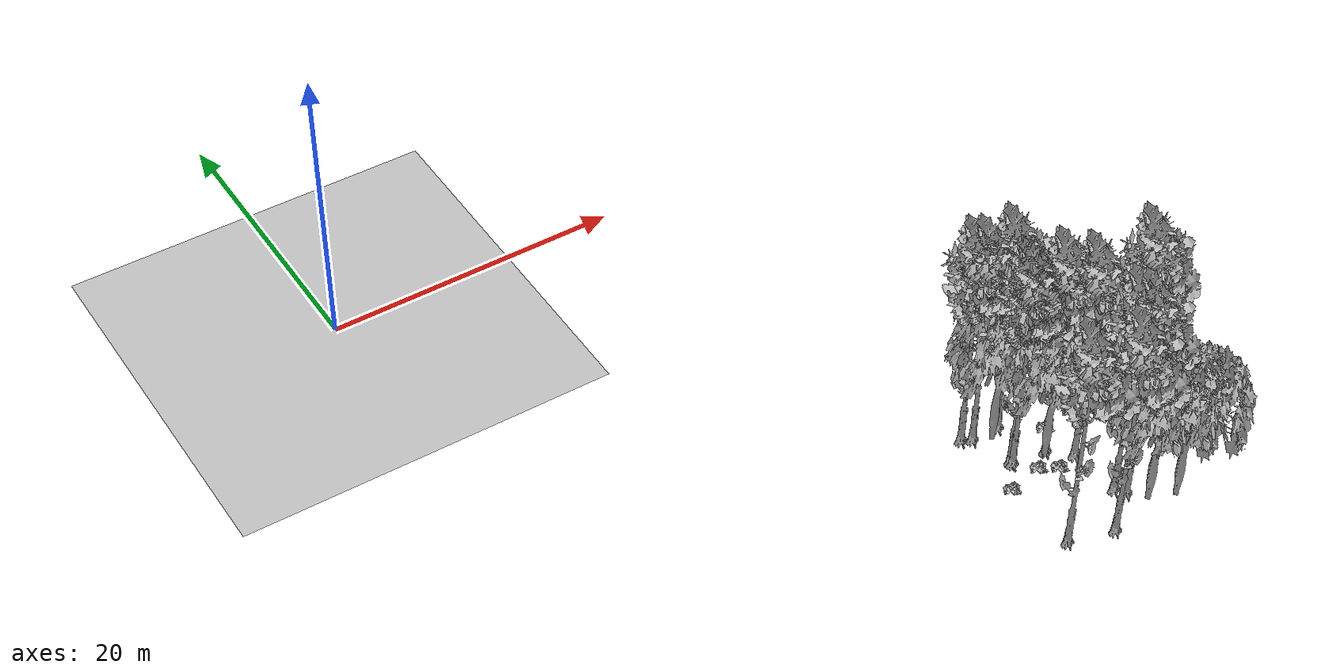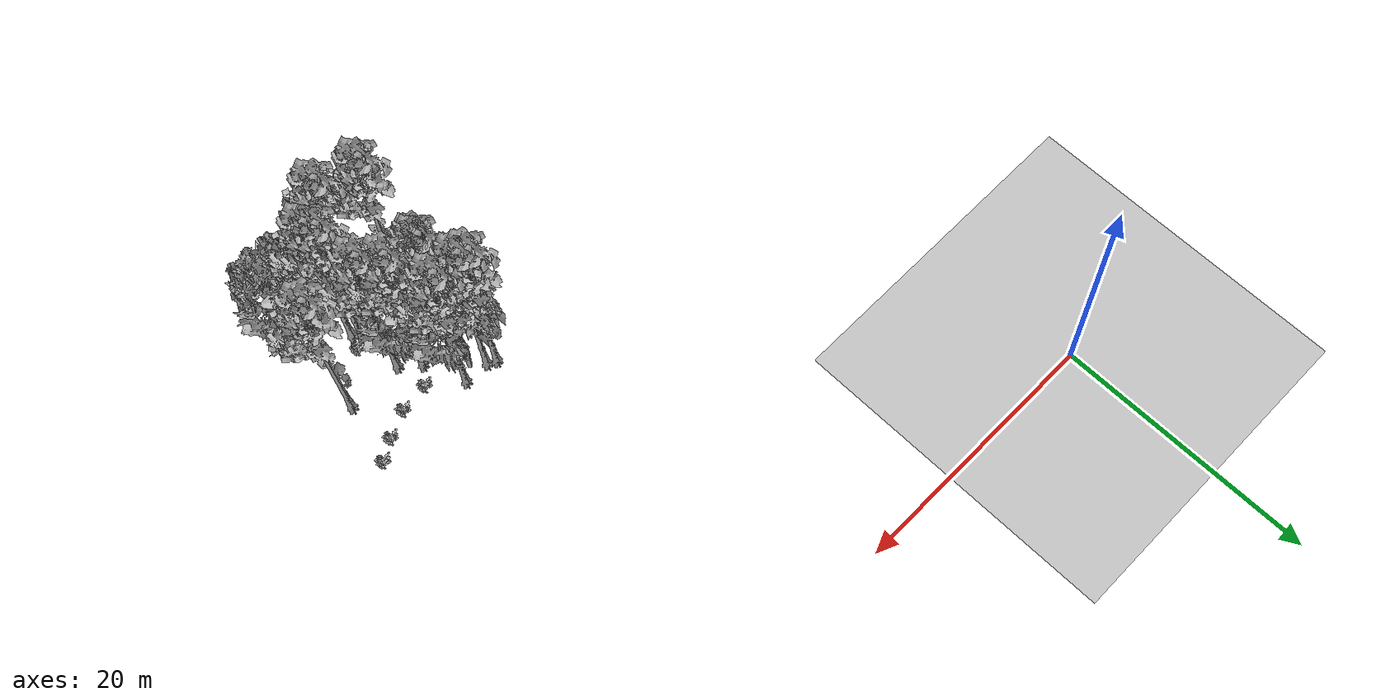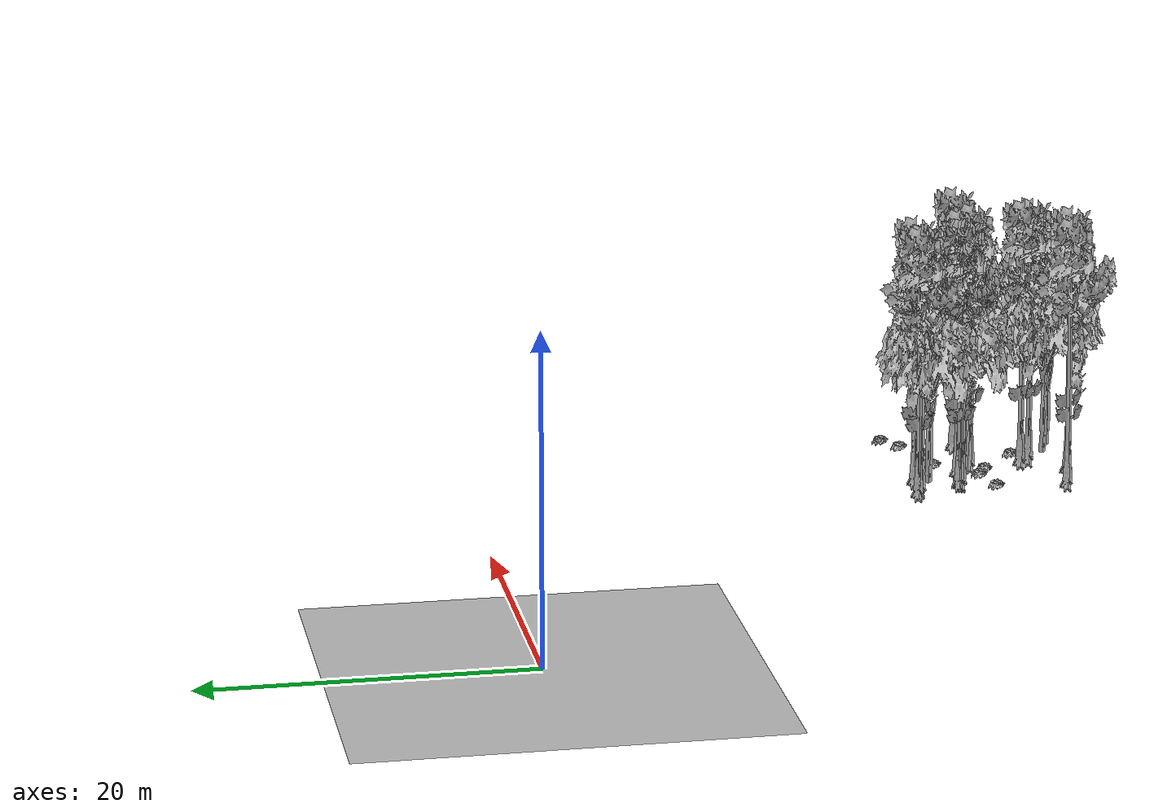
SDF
<sdf version="1.7">
 <world name="default">
  <model name="ground_plane">
   <static>1</static>
   <link name="link">
    <collision name="collision">
     <pose>-50 0 0 0 -0 0</pose>
     <geometry><plane><normal>0 0 1</normal><size>80 80</size></plane></geometry>
     <surface><contact><ode><min_depth>0.01</min_depth><max_vel>0</max_vel></ode></contact></surface>
    </collision>
    <visual name="grass">
     <cast_shadows>0</cast_shadows>
     <geometry>
      <mesh>
       <scale>0.46714285714285714 0.46714285714285714 0.1</scale>
       <uri>file://grass_plane/meshes/grass_plane.dae</uri>
      </mesh>
     </geometry>
    </visual>
   </link>
  </model>
  <model name="Tree 66">
   <static>1</static>
   <pose>31.727839768722916 -32.07183344091236 0 1.57079 -0 0</pose>
   <link name="link">
    <collision name="collision">
     <geometry><mesh><scale>3.5 5 3.5</scale><uri>model://tree_9/meshes/tree_9.obj</uri></mesh></geometry>
    </collision>
    <visual name="visual">
     <geometry><mesh><scale>3.5 5 3.5</scale><uri>model://tree_9/meshes/tree_9.obj</uri></mesh></geometry>
    </visual>
   </link>
  </model>
  <model name="Tree 97">
   <static>1</static>
   <pose>33.28308471343837 -36.688303805078284 0 1.57079 -0 0</pose>
   <link name="link">
    <collision name="collision">
     <geometry><mesh><scale>3.5 5 3.5</scale><uri>model://tree_9/meshes/tree_9.obj</uri></mesh></geometry>
    </collision>
    <visual name="visual">
     <geometry><mesh><scale>3.5 5 3.5</scale><uri>model://tree_9/meshes/tree_9.obj</uri></mesh></geometry>
    </visual>
   </link>
  </model>
  <model name="Tree 101">
   <static>1</static>
   <pose>29.411195989953754 -31.81008531708878 0 1.57079 -0 0</pose>
   <link name="link">
    <collision name="collision">
     <geometry><mesh><scale>3.5 5 3.5</scale><uri>model://tree_9/meshes/tree_9.obj</uri></mesh></geometry>
    </collision>
    <visual name="visual">
     <geometry><mesh><scale>3.5 5 3.5</scale><uri>model://tree_9/meshes/tree_9.obj</uri></mesh></geometry>
    </visual>
   </link>
  </model>
  <model name="Tree 244">
   <static>1</static>
   <pose>28.572495567751773 -28.938107536458162 0 1.57079 -0 0</pose>
   <link name="link">
    <collision name="collision">
     <geometry><mesh><scale>3.5 5 3.5</scale><uri>model://tree_9/meshes/tree_9.obj</uri></mesh></geometry>
    </collision>
    <visual name="visual">
     <geometry><mesh><scale>3.5 5 3.5</scale><uri>model://tree_9/meshes/tree_9.obj</uri></mesh></geometry>
    </visual>
   </link>
  </model>
  <model name="Tree 256">
   <static>1</static>
   <pose>34.286011097666474 -38.48305293317915 0 1.57079 -0 0</pose>
   <link name="link">
    <collision name="collision">
     <geometry><mesh><scale>3.5 5 3.5</scale><uri>model://tree_2/meshes/tree_2.obj</uri></mesh></geometry>
    </collision>
    <visual name="visual">
     <geometry><mesh><scale>3.5 5 3.5</scale><uri>model://tree_2/meshes/tree_2.obj</uri></mesh></geometry>
    </visual>
   </link>
  </model>
  <model name="Tree 268">
   <static>1</static>
   <pose>29.41127491115371 -29.66476222978441 0 1.57079 -0 0</pose>
   <link name="link">
    <collision name="collision">
     <geometry><mesh><scale>3.5 5 3.5</scale><uri>model://tree_2/meshes/tree_2.obj</uri></mesh></geometry>
    </collision>
    <visual name="visual">
     <geometry><mesh><scale>3.5 5 3.5</scale><uri>model://tree_2/meshes/tree_2.obj</uri></mesh></geometry>
    </visual>
   </link>
  </model>
  <model name="Tree 376">
   <static>1</static>
   <pose>35.91504669754727 -39.110602329663706 0 1.57079 -0 0</pose>
   <link name="link">
    <collision name="collision">
     <geometry><mesh><scale>3.5 5 3.5</scale><uri>model://tree_2/meshes/tree_2.obj</uri></mesh></geometry>
    </collision>
    <visual name="visual">
     <geometry><mesh><scale>3.5 5 3.5</scale><uri>model://tree_2/meshes/tree_2.obj</uri></mesh></geometry>
    </visual>
   </link>
  </model>
  <model name="Tree 402">
   <static>1</static>
   <pose>28.30165197238287 -38.4898794581277 0 1.57079 -0 0</pose>
   <link name="link">
    <collision name="collision">
     <geometry><mesh><scale>3.5 5 3.5</scale><uri>model://tree_9/meshes/tree_9.obj</uri></mesh></geometry>
    </collision>
    <visual name="visual">
     <geometry><mesh><scale>3.5 5 3.5</scale><uri>model://tree_9/meshes/tree_9.obj</uri></mesh></geometry>
    </visual>
   </link>
  </model>
  <model name="Tree 406">
   <static>1</static>
   <pose>33.68936498498242 -37.332562427725726 0 1.57079 -0 0</pose>
   <link name="link">
    <collision name="collision">
     <geometry><mesh><scale>3.5 5 3.5</scale><uri>model://tree_9/meshes/tree_9.obj</uri></mesh></geometry>
    </collision>
    <visual name="visual">
     <geometry><mesh><scale>3.5 5 3.5</scale><uri>model://tree_9/meshes/tree_9.obj</uri></mesh></geometry>
    </visual>
   </link>
  </model>
  <model name="Tree 448">
   <static>1</static>
   <pose>31.218019174574337 -32.48372124637547 0 1.57079 -0 0</pose>
   <link name="link">
    <collision name="collision">
     <geometry><mesh><scale>3.5 5 3.5</scale><uri>model://tree_2/meshes/tree_2.obj</uri></mesh></geometry>
    </collision>
    <visual name="visual">
     <geometry><mesh><scale>3.5 5 3.5</scale><uri>model://tree_2/meshes/tree_2.obj</uri></mesh></geometry>
    </visual>
   </link>
  </model>
  <model name="Tree 489">
   <static>1</static>
   <pose>31.25599486105928 -39.273622363831834 0 1.57079 -0 0</pose>
   <link name="link">
    <collision name="collision">
     <geometry><mesh><scale>3.5 5 3.5</scale><uri>model://tree_9/meshes/tree_9.obj</uri></mesh></geometry>
    </collision>
    <visual name="visual">
     <geometry><mesh><scale>3.5 5 3.5</scale><uri>model://tree_9/meshes/tree_9.obj</uri></mesh></geometry>
    </visual>
   </link>
  </model>
  <model name="Tree 519">
   <static>1</static>
   <pose>33.03577523488555 -33.25727610299717 0 1.57079 -0 0</pose>
   <link name="link">
    <collision name="collision">
     <geometry><mesh><scale>3.5 5 3.5</scale><uri>model://tree_9/meshes/tree_9.obj</uri></mesh></geometry>
    </collision>
    <visual name="visual">
     <geometry><mesh><scale>3.5 5 3.5</scale><uri>model://tree_9/meshes/tree_9.obj</uri></mesh></geometry>
    </visual>
   </link>
  </model>
  <model name="Tree 533">
   <static>1</static>
   <pose>29.3978148226973 -31.626109331107173 0 1.57079 -0 0</pose>
   <link name="link">
    <collision name="collision">
     <geometry><mesh><scale>3.5 5 3.5</scale><uri>model://tree_9/meshes/tree_9.obj</uri></mesh></geometry>
    </collision>
    <visual name="visual">
     <geometry><mesh><scale>3.5 5 3.5</scale><uri>model://tree_9/meshes/tree_9.obj</uri></mesh></geometry>
    </visual>
   </link>
  </model>
  <model name="Tree 569">
   <static>1</static>
   <pose>27.941329845386335 -28.613056534858252 0 1.57079 -0 0</pose>
   <link name="link">
    <collision name="collision">
     <geometry><mesh><scale>3.5 5 3.5</scale><uri>model://tree_9/meshes/tree_9.obj</uri></mesh></geometry>
    </collision>
    <visual name="visual">
     <geometry><mesh><scale>3.5 5 3.5</scale><uri>model://tree_9/meshes/tree_9.obj</uri></mesh></geometry>
    </visual>
   </link>
  </model>
  <model name="Tree 574">
   <static>1</static>
   <pose>30.488652089890905 -28.947508102560473 0 1.57079 -0 0</pose>
   <link name="link">
    <collision name="collision">
     <geometry><mesh><scale>3.5 5 3.5</scale><uri>model://tree_9/meshes/tree_9.obj</uri></mesh></geometry>
    </collision>
    <visual name="visual">
     <geometry><mesh><scale>3.5 5 3.5</scale><uri>model://tree_9/meshes/tree_9.obj</uri></mesh></geometry>
    </visual>
   </link>
  </model>
  <model name="Tree 581">
   <static>1</static>
   <pose>37.23487434606763 -33.16625195971346 0 1.57079 -0 0</pose>
   <link name="link">
    <collision name="collision">
     <geometry><mesh><scale>3.5 5 3.5</scale><uri>model://tree_9/meshes/tree_9.obj</uri></mesh></geometry>
    </collision>
    <visual name="visual">
     <geometry><mesh><scale>3.5 5 3.5</scale><uri>model://tree_9/meshes/tree_9.obj</uri></mesh></geometry>
    </visual>
   </link>
  </model>
  <model name="Bush 72">
   <static>1</static>
   <pose>38.34080961752839 -28.567839085413496 0 1.57079 -0 0</pose>
   <link name="link">
    <collision name="collision">
     <geometry><mesh><scale>2 2 2</scale><uri>model://bush_2/meshes/bush_2.obj</uri></mesh></geometry>
     <surface><contact><collide_without_contact>false</collide_without_contact></contact></surface>
    </collision>
    <visual name="visual">
     <geometry><mesh><scale>2 2 2</scale><uri>model://bush_2/meshes/bush_2.obj</uri></mesh></geometry>
    </visual>
   </link>
  </model>
  <model name="Bush 77">
   <static>1</static>
   <pose>32.67052404355971 -30.780871779842506 0 1.57079 -0 0</pose>
   <link name="link">
    <collision name="collision">
     <geometry><mesh><scale>2 2 2</scale><uri>model://bush_2/meshes/bush_2.obj</uri></mesh></geometry>
     <surface><contact><collide_without_contact>false</collide_without_contact></contact></surface>
    </collision>
    <visual name="visual">
     <geometry><mesh><scale>2 2 2</scale><uri>model://bush_2/meshes/bush_2.obj</uri></mesh></geometry>
    </visual>
   </link>
  </model>
  <model name="Bush 223">
   <static>1</static>
   <pose>34.90890015453485 -30.45612530186867 0 1.57079 -0 0</pose>
   <link name="link">
    <collision name="collision">
     <geometry><mesh><scale>2 2 2</scale><uri>model://bush_2/meshes/bush_2.obj</uri></mesh></geometry>
     <surface><contact><collide_without_contact>false</collide_without_contact></contact></surface>
    </collision>
    <visual name="visual">
     <geometry><mesh><scale>2 2 2</scale><uri>model://bush_2/meshes/bush_2.obj</uri></mesh></geometry>
    </visual>
   </link>
  </model>
  <model name="Bush 290">
   <static>1</static>
   <pose>34.05746557999852 -36.27513774359145 0 1.57079 -0 0</pose>
   <link name="link">
    <collision name="collision">
     <geometry><mesh><scale>2 2 2</scale><uri>model://bush_2/meshes/bush_2.obj</uri></mesh></geometry>
     <surface><contact><collide_without_contact>false</collide_without_contact></contact></surface>
    </collision>
    <visual name="visual">
     <geometry><mesh><scale>2 2 2</scale><uri>model://bush_2/meshes/bush_2.obj</uri></mesh></geometry>
    </visual>
   </link>
  </model>
  <model name="Bush 324">
   <static>1</static>
   <pose>31.384556706932116 -33.84009250513698 0 1.57079 -0 0</pose>
   <link name="link">
    <collision name="collision">
     <geometry><mesh><scale>2 2 2</scale><uri>model://bush_2/meshes/bush_2.obj</uri></mesh></geometry>
     <surface><contact><collide_without_contact>false</collide_without_contact></contact></surface>
    </collision>
    <visual name="visual">
     <geometry><mesh><scale>2 2 2</scale><uri>model://bush_2/meshes/bush_2.obj</uri></mesh></geometry>
    </visual>
   </link>
  </model>
  <model name="Bush 430">
   <static>1</static>
   <pose>27.84789262314095 -33.7642894588744 0 1.57079 -0 0</pose>
   <link name="link">
    <collision name="collision">
     <geometry><mesh><scale>2 2 2</scale><uri>model://bush_2/meshes/bush_2.obj</uri></mesh></geometry>
     <surface><contact><collide_without_contact>false</collide_without_contact></contact></surface>
    </collision>
    <visual name="visual">
     <geometry><mesh><scale>2 2 2</scale><uri>model://bush_2/meshes/bush_2.obj</uri></mesh></geometry>
    </visual>
   </link>
  </model>
  <model name="Bush 446">
   <static>1</static>
   <pose>30.253711551535744 -33.22606008549869 0 1.57079 -0 0</pose>
   <link name="link">
    <collision name="collision">
     <geometry><mesh><scale>2 2 2</scale><uri>model://bush_2/meshes/bush_2.obj</uri></mesh></geometry>
     <surface><contact><collide_without_contact>false</collide_without_contact></contact></surface>
    </collision>
    <visual name="visual">
     <geometry><mesh><scale>2 2 2</scale><uri>model://bush_2/meshes/bush_2.obj</uri></mesh></geometry>
    </visual>
   </link>
  </model>
  <model name="Bush 489">
   <static>1</static>
   <pose>36.86193410550844 -29.49515836954265 0 1.57079 -0 0</pose>
   <link name="link">
    <collision name="collision">
     <geometry><mesh><scale>2 2 2</scale><uri>model://bush_2/meshes/bush_2.obj</uri></mesh></geometry>
     <surface><contact><collide_without_contact>false</collide_without_contact></contact></surface>
    </collision>
    <visual name="visual">
     <geometry><mesh><scale>2 2 2</scale><uri>model://bush_2/meshes/bush_2.obj</uri></mesh></geometry>
    </visual>
   </link>
  </model>
 </world>
</sdf>
